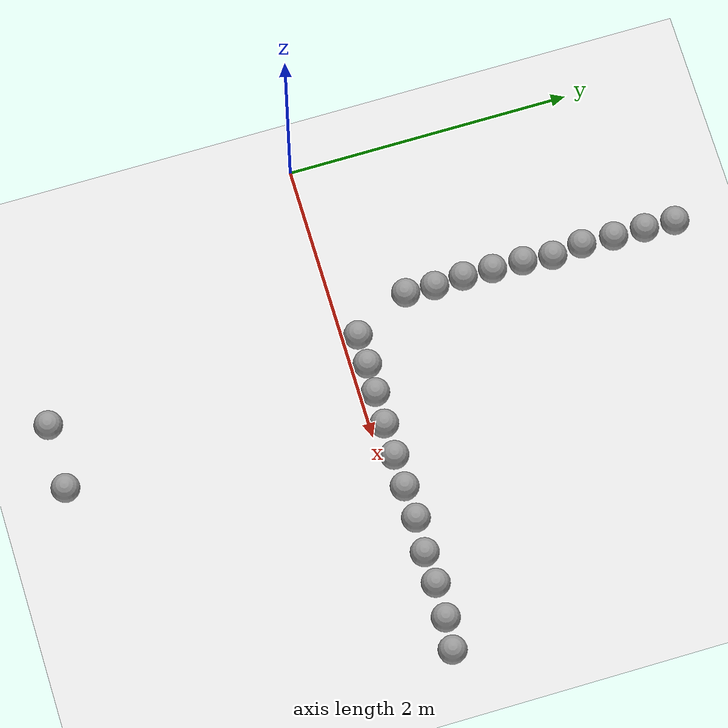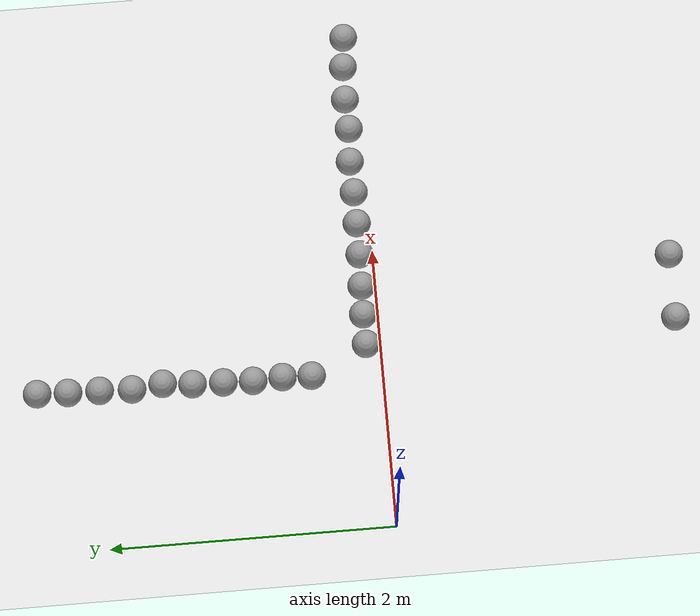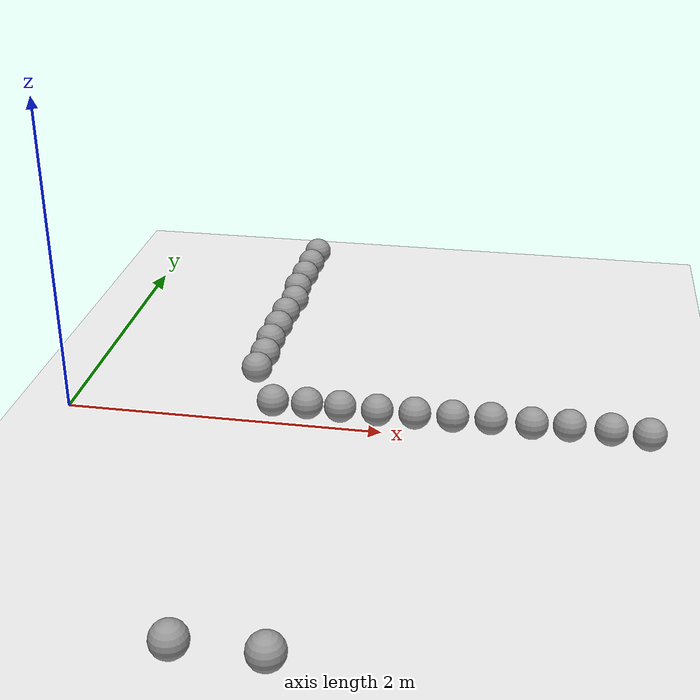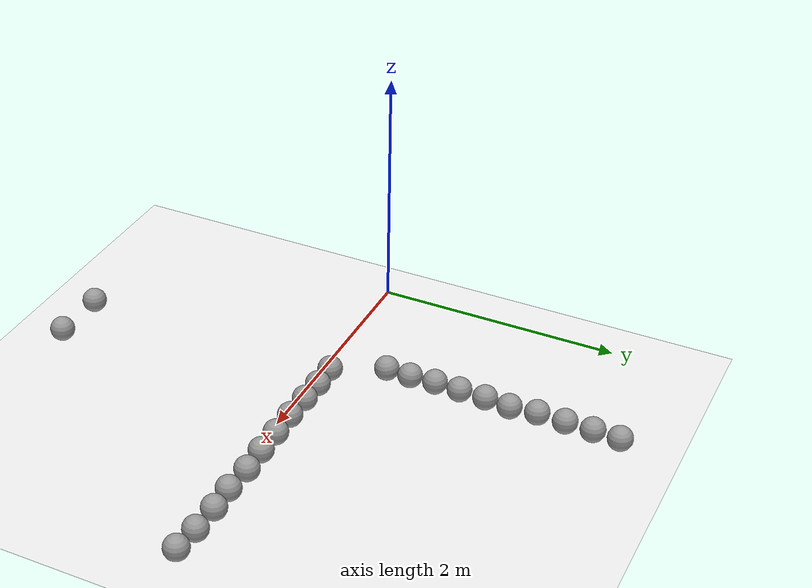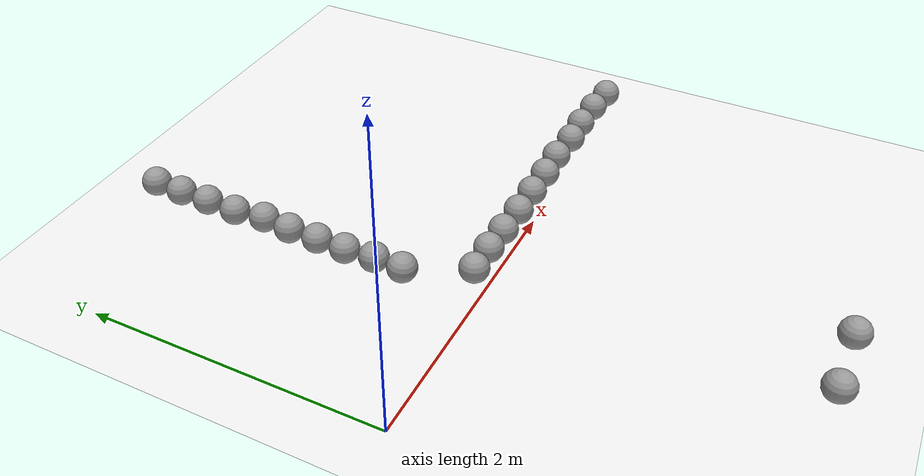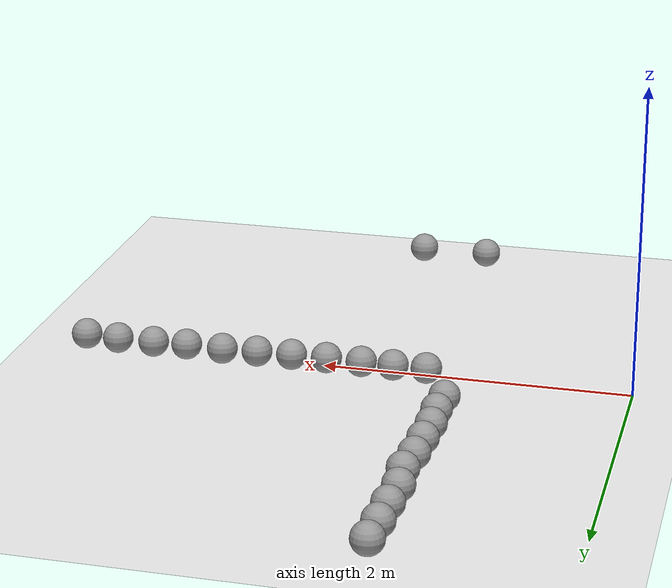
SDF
<sdf version="1.7">
 <world name="default">
  <model name="ground_plane">
   <static>1</static>
   <link name="link">
    <collision name="collision">
     <geometry><plane><normal>0 0 1</normal><size>100 100</size></plane></geometry>
     <surface>
      <contact><collide_bitmask>65535</collide_bitmask></contact>
      <friction><ode><mu>100</mu><mu2>50</mu2></ode></friction>
     </surface>
    </collision>
    <visual name="visual">
     <cast_shadows>0</cast_shadows>
     <geometry><plane><normal>0 0 1</normal><size>100 100</size></plane></geometry>
     <material>
      <script><uri>file://media/materials/scripts/gazebo.material</uri><name>Gazebo/White</name></script>
     </material>
    </visual>
   </link>
  </model>
  <model name="sphere_49">
   <link name="link_0">
    <inertial>
     <mass>1</mass>
     <inertia><ixx>0.1</ixx><ixy>0</ixy><ixz>0</ixz><iyy>0.1</iyy><iyz>0</iyz><izz>0.1</izz></inertia>
    </inertial>
    <visual name="visual">
     <geometry><sphere><radius>0.1</radius></sphere></geometry>
     <material>
      <lighting>1</lighting>
      <script><uri>file://media/materials/scripts/gazebo.material</uri><name>Gazebo/Grey</name></script>
      <shader type="pixel"><normal_map>__default__</normal_map></shader>
      <ambient>0.3 0.3 0.3 1</ambient>
      <diffuse>0.7 0.7 0.7 1</diffuse>
      <specular>0.01 0.01 0.01 1</specular>
      <emissive>0 0 0 1</emissive>
     </material>
    </visual>
    <collision name="collision">
     <geometry><sphere><radius>0.1</radius></sphere></geometry>
     <surface>
      <friction>
       <ode><mu>1</mu><mu2>1</mu2><fdir1>0 0 0</fdir1><slip1>0</slip1><slip2>0</slip2></ode>
       <torsional>
        <coefficient>1</coefficient>
        <patch_radius>0</patch_radius>
        <surface_radius>0</surface_radius>
        <use_patch_radius>1</use_patch_radius>
        <ode><slip>0</slip></ode>
       </torsional>
      </friction>
      <bounce><restitution_coefficient>0</restitution_coefficient><threshold>1e+06</threshold></bounce>
      <contact>
       <collide_without_contact>0</collide_without_contact>
       <collide_without_contact_bitmask>1</collide_without_contact_bitmask>
       <collide_bitmask>1</collide_bitmask>
       <ode>
        <soft_cfm>0</soft_cfm>
        <soft_erp>0.2</soft_erp>
        <kp>1e+13</kp>
        <kd>1</kd>
        <max_vel>0.01</max_vel>
        <min_depth>0</min_depth>
       </ode>
       <bullet>
        <split_impulse>1</split_impulse>
        <split_impulse_penetration_threshold>-0.01</split_impulse_penetration_threshold>
        <soft_cfm>0</soft_cfm>
        <soft_erp>0.2</soft_erp>
        <kp>1e+13</kp>
        <kd>1</kd>
       </bullet>
      </contact>
     </surface>
    </collision>
   </link>
   <static>0</static>
   <pose>1.3179 -2.0915 0.1 0 -0 0</pose>
  </model>
  <model name="sphere_51">
   <link name="link_0">
    <inertial>
     <mass>1</mass>
     <inertia><ixx>0.1</ixx><ixy>0</ixy><ixz>0</ixz><iyy>0.1</iyy><iyz>0</iyz><izz>0.1</izz></inertia>
    </inertial>
    <visual name="visual">
     <geometry><sphere><radius>0.1</radius></sphere></geometry>
     <material>
      <lighting>1</lighting>
      <script><uri>file://media/materials/scripts/gazebo.material</uri><name>Gazebo/Grey</name></script>
      <shader type="pixel"><normal_map>__default__</normal_map></shader>
      <ambient>0.3 0.3 0.3 1</ambient>
      <diffuse>0.7 0.7 0.7 1</diffuse>
      <specular>0.01 0.01 0.01 1</specular>
      <emissive>0 0 0 1</emissive>
     </material>
    </visual>
    <collision name="collision">
     <geometry><sphere><radius>0.1</radius></sphere></geometry>
     <surface>
      <friction>
       <ode><mu>1</mu><mu2>1</mu2><fdir1>0 0 0</fdir1><slip1>0</slip1><slip2>0</slip2></ode>
       <torsional>
        <coefficient>1</coefficient>
        <patch_radius>0</patch_radius>
        <surface_radius>0</surface_radius>
        <use_patch_radius>1</use_patch_radius>
        <ode><slip>0</slip></ode>
       </torsional>
      </friction>
      <bounce><restitution_coefficient>0</restitution_coefficient><threshold>1e+06</threshold></bounce>
      <contact>
       <collide_without_contact>0</collide_without_contact>
       <collide_without_contact_bitmask>1</collide_without_contact_bitmask>
       <collide_bitmask>1</collide_bitmask>
       <ode>
        <soft_cfm>0</soft_cfm>
        <soft_erp>0.2</soft_erp>
        <kp>1e+13</kp>
        <kd>1</kd>
        <max_vel>0.01</max_vel>
        <min_depth>0</min_depth>
       </ode>
       <bullet>
        <split_impulse>1</split_impulse>
        <split_impulse_penetration_threshold>-0.01</split_impulse_penetration_threshold>
        <soft_cfm>0</soft_cfm>
        <soft_erp>0.2</soft_erp>
        <kp>1e+13</kp>
        <kd>1</kd>
       </bullet>
      </contact>
     </surface>
    </collision>
   </link>
   <static>0</static>
   <pose>1.77871 -2.09636 0.1 0 -0 0</pose>
  </model>
  <model name="sphere_63">
   <link name="link_0">
    <inertial>
     <mass>1</mass>
     <inertia><ixx>0.1</ixx><ixy>0</ixy><ixz>0</ixz><iyy>0.1</iyy><iyz>0</iyz><izz>0.1</izz></inertia>
    </inertial>
    <visual name="visual">
     <geometry><sphere><radius>0.1</radius></sphere></geometry>
     <material>
      <lighting>1</lighting>
      <script><uri>file://media/materials/scripts/gazebo.material</uri><name>Gazebo/Grey</name></script>
      <shader type="pixel"><normal_map>__default__</normal_map></shader>
      <ambient>0.3 0.3 0.3 1</ambient>
      <diffuse>0.7 0.7 0.7 1</diffuse>
      <specular>0.01 0.01 0.01 1</specular>
      <emissive>0 0 0 1</emissive>
     </material>
    </visual>
    <collision name="collision">
     <geometry><sphere><radius>0.1</radius></sphere></geometry>
     <surface>
      <friction>
       <ode><mu>1</mu><mu2>1</mu2><fdir1>0 0 0</fdir1><slip1>0</slip1><slip2>0</slip2></ode>
       <torsional>
        <coefficient>1</coefficient>
        <patch_radius>0</patch_radius>
        <surface_radius>0</surface_radius>
        <use_patch_radius>1</use_patch_radius>
        <ode><slip>0</slip></ode>
       </torsional>
      </friction>
      <bounce><restitution_coefficient>0</restitution_coefficient><threshold>1e+06</threshold></bounce>
      <contact>
       <collide_without_contact>0</collide_without_contact>
       <collide_without_contact_bitmask>1</collide_without_contact_bitmask>
       <collide_bitmask>1</collide_bitmask>
       <ode>
        <soft_cfm>0</soft_cfm>
        <soft_erp>0.2</soft_erp>
        <kp>1e+13</kp>
        <kd>1</kd>
        <max_vel>0.01</max_vel>
        <min_depth>0</min_depth>
       </ode>
       <bullet>
        <split_impulse>1</split_impulse>
        <split_impulse_penetration_threshold>-0.01</split_impulse_penetration_threshold>
        <soft_cfm>0</soft_cfm>
        <soft_erp>0.2</soft_erp>
        <kp>1e+13</kp>
        <kd>1</kd>
       </bullet>
      </contact>
     </surface>
    </collision>
   </link>
   <static>0</static>
   <pose>1.30048 0.10381 0.1 0 -0 0</pose>
  </model>
  <model name="sphere_64">
   <link name="link_0">
    <inertial>
     <mass>1</mass>
     <inertia><ixx>0.1</ixx><ixy>0</ixy><ixz>0</ixz><iyy>0.1</iyy><iyz>0</iyz><izz>0.1</izz></inertia>
    </inertial>
    <visual name="visual">
     <geometry><sphere><radius>0.1</radius></sphere></geometry>
     <material>
      <lighting>1</lighting>
      <script><uri>file://media/materials/scripts/gazebo.material</uri><name>Gazebo/Grey</name></script>
      <shader type="pixel"><normal_map>__default__</normal_map></shader>
      <ambient>0.3 0.3 0.3 1</ambient>
      <diffuse>0.7 0.7 0.7 1</diffuse>
      <specular>0.01 0.01 0.01 1</specular>
      <emissive>0 0 0 1</emissive>
     </material>
    </visual>
    <collision name="collision">
     <geometry><sphere><radius>0.1</radius></sphere></geometry>
     <surface>
      <friction>
       <ode><mu>1</mu><mu2>1</mu2><fdir1>0 0 0</fdir1><slip1>0</slip1><slip2>0</slip2></ode>
       <torsional>
        <coefficient>1</coefficient>
        <patch_radius>0</patch_radius>
        <surface_radius>0</surface_radius>
        <use_patch_radius>1</use_patch_radius>
        <ode><slip>0</slip></ode>
       </torsional>
      </friction>
      <bounce><restitution_coefficient>0</restitution_coefficient><threshold>1e+06</threshold></bounce>
      <contact>
       <collide_without_contact>0</collide_without_contact>
       <collide_without_contact_bitmask>1</collide_without_contact_bitmask>
       <collide_bitmask>1</collide_bitmask>
       <ode>
        <soft_cfm>0</soft_cfm>
        <soft_erp>0.2</soft_erp>
        <kp>1e+13</kp>
        <kd>1</kd>
        <max_vel>0.01</max_vel>
        <min_depth>0</min_depth>
       </ode>
       <bullet>
        <split_impulse>1</split_impulse>
        <split_impulse_penetration_threshold>-0.01</split_impulse_penetration_threshold>
        <soft_cfm>0</soft_cfm>
        <soft_erp>0.2</soft_erp>
        <kp>1e+13</kp>
        <kd>1</kd>
       </bullet>
      </contact>
     </surface>
    </collision>
   </link>
   <static>0</static>
   <pose>1.51709 0.105594 0.1 0 -0 0</pose>
  </model>
  <model name="sphere_65">
   <link name="link_0">
    <inertial>
     <mass>1</mass>
     <inertia><ixx>0.1</ixx><ixy>0</ixy><ixz>0</ixz><iyy>0.1</iyy><iyz>0</iyz><izz>0.1</izz></inertia>
    </inertial>
    <visual name="visual">
     <geometry><sphere><radius>0.1</radius></sphere></geometry>
     <material>
      <lighting>1</lighting>
      <script><uri>file://media/materials/scripts/gazebo.material</uri><name>Gazebo/Grey</name></script>
      <shader type="pixel"><normal_map>__default__</normal_map></shader>
      <ambient>0.3 0.3 0.3 1</ambient>
      <diffuse>0.7 0.7 0.7 1</diffuse>
      <specular>0.01 0.01 0.01 1</specular>
      <emissive>0 0 0 1</emissive>
     </material>
    </visual>
    <collision name="collision">
     <geometry><sphere><radius>0.1</radius></sphere></geometry>
     <surface>
      <friction>
       <ode><mu>1</mu><mu2>1</mu2><fdir1>0 0 0</fdir1><slip1>0</slip1><slip2>0</slip2></ode>
       <torsional>
        <coefficient>1</coefficient>
        <patch_radius>0</patch_radius>
        <surface_radius>0</surface_radius>
        <use_patch_radius>1</use_patch_radius>
        <ode><slip>0</slip></ode>
       </torsional>
      </friction>
      <bounce><restitution_coefficient>0</restitution_coefficient><threshold>1e+06</threshold></bounce>
      <contact>
       <collide_without_contact>0</collide_without_contact>
       <collide_without_contact_bitmask>1</collide_without_contact_bitmask>
       <collide_bitmask>1</collide_bitmask>
       <ode>
        <soft_cfm>0</soft_cfm>
        <soft_erp>0.2</soft_erp>
        <kp>1e+13</kp>
        <kd>1</kd>
        <max_vel>0.01</max_vel>
        <min_depth>0</min_depth>
       </ode>
       <bullet>
        <split_impulse>1</split_impulse>
        <split_impulse_penetration_threshold>-0.01</split_impulse_penetration_threshold>
        <soft_cfm>0</soft_cfm>
        <soft_erp>0.2</soft_erp>
        <kp>1e+13</kp>
        <kd>1</kd>
       </bullet>
      </contact>
     </surface>
    </collision>
   </link>
   <static>0</static>
   <pose>1.7263 0.099869 0.1 0 -0 0</pose>
  </model>
  <model name="sphere_66">
   <link name="link_0">
    <inertial>
     <mass>1</mass>
     <inertia><ixx>0.1</ixx><ixy>0</ixy><ixz>0</ixz><iyy>0.1</iyy><iyz>0</iyz><izz>0.1</izz></inertia>
    </inertial>
    <visual name="visual">
     <geometry><sphere><radius>0.1</radius></sphere></geometry>
     <material>
      <lighting>1</lighting>
      <script><uri>file://media/materials/scripts/gazebo.material</uri><name>Gazebo/Grey</name></script>
      <shader type="pixel"><normal_map>__default__</normal_map></shader>
      <ambient>0.3 0.3 0.3 1</ambient>
      <diffuse>0.7 0.7 0.7 1</diffuse>
      <specular>0.01 0.01 0.01 1</specular>
      <emissive>0 0 0 1</emissive>
     </material>
    </visual>
    <collision name="collision">
     <geometry><sphere><radius>0.1</radius></sphere></geometry>
     <surface>
      <friction>
       <ode><mu>1</mu><mu2>1</mu2><fdir1>0 0 0</fdir1><slip1>0</slip1><slip2>0</slip2></ode>
       <torsional>
        <coefficient>1</coefficient>
        <patch_radius>0</patch_radius>
        <surface_radius>0</surface_radius>
        <use_patch_radius>1</use_patch_radius>
        <ode><slip>0</slip></ode>
       </torsional>
      </friction>
      <bounce><restitution_coefficient>0</restitution_coefficient><threshold>1e+06</threshold></bounce>
      <contact>
       <collide_without_contact>0</collide_without_contact>
       <collide_without_contact_bitmask>1</collide_without_contact_bitmask>
       <collide_bitmask>1</collide_bitmask>
       <ode>
        <soft_cfm>0</soft_cfm>
        <soft_erp>0.2</soft_erp>
        <kp>1e+13</kp>
        <kd>1</kd>
        <max_vel>0.01</max_vel>
        <min_depth>0</min_depth>
       </ode>
       <bullet>
        <split_impulse>1</split_impulse>
        <split_impulse_penetration_threshold>-0.01</split_impulse_penetration_threshold>
        <soft_cfm>0</soft_cfm>
        <soft_erp>0.2</soft_erp>
        <kp>1e+13</kp>
        <kd>1</kd>
       </bullet>
      </contact>
     </surface>
    </collision>
   </link>
   <static>0</static>
   <pose>1.95782 0.094245 0.1 0 -0 0</pose>
  </model>
  <model name="sphere_67">
   <link name="link_0">
    <inertial>
     <mass>1</mass>
     <inertia><ixx>0.1</ixx><ixy>0</ixy><ixz>0</ixz><iyy>0.1</iyy><iyz>0</iyz><izz>0.1</izz></inertia>
    </inertial>
    <visual name="visual">
     <geometry><sphere><radius>0.1</radius></sphere></geometry>
     <material>
      <lighting>1</lighting>
      <script><uri>file://media/materials/scripts/gazebo.material</uri><name>Gazebo/Grey</name></script>
      <shader type="pixel"><normal_map>__default__</normal_map></shader>
      <ambient>0.3 0.3 0.3 1</ambient>
      <diffuse>0.7 0.7 0.7 1</diffuse>
      <specular>0.01 0.01 0.01 1</specular>
      <emissive>0 0 0 1</emissive>
     </material>
    </visual>
    <collision name="collision">
     <geometry><sphere><radius>0.1</radius></sphere></geometry>
     <surface>
      <friction>
       <ode><mu>1</mu><mu2>1</mu2><fdir1>0 0 0</fdir1><slip1>0</slip1><slip2>0</slip2></ode>
       <torsional>
        <coefficient>1</coefficient>
        <patch_radius>0</patch_radius>
        <surface_radius>0</surface_radius>
        <use_patch_radius>1</use_patch_radius>
        <ode><slip>0</slip></ode>
       </torsional>
      </friction>
      <bounce><restitution_coefficient>0</restitution_coefficient><threshold>1e+06</threshold></bounce>
      <contact>
       <collide_without_contact>0</collide_without_contact>
       <collide_without_contact_bitmask>1</collide_without_contact_bitmask>
       <collide_bitmask>1</collide_bitmask>
       <ode>
        <soft_cfm>0</soft_cfm>
        <soft_erp>0.2</soft_erp>
        <kp>1e+13</kp>
        <kd>1</kd>
        <max_vel>0.01</max_vel>
        <min_depth>0</min_depth>
       </ode>
       <bullet>
        <split_impulse>1</split_impulse>
        <split_impulse_penetration_threshold>-0.01</split_impulse_penetration_threshold>
        <soft_cfm>0</soft_cfm>
        <soft_erp>0.2</soft_erp>
        <kp>1e+13</kp>
        <kd>1</kd>
       </bullet>
      </contact>
     </surface>
    </collision>
   </link>
   <static>0</static>
   <pose>2.18937 0.096173 0.1 0 -0 0</pose>
  </model>
  <model name="sphere_68">
   <link name="link_0">
    <inertial>
     <mass>1</mass>
     <inertia><ixx>0.1</ixx><ixy>0</ixy><ixz>0</ixz><iyy>0.1</iyy><iyz>0</iyz><izz>0.1</izz></inertia>
    </inertial>
    <visual name="visual">
     <geometry><sphere><radius>0.1</radius></sphere></geometry>
     <material>
      <lighting>1</lighting>
      <script><uri>file://media/materials/scripts/gazebo.material</uri><name>Gazebo/Grey</name></script>
      <shader type="pixel"><normal_map>__default__</normal_map></shader>
      <ambient>0.3 0.3 0.3 1</ambient>
      <diffuse>0.7 0.7 0.7 1</diffuse>
      <specular>0.01 0.01 0.01 1</specular>
      <emissive>0 0 0 1</emissive>
     </material>
    </visual>
    <collision name="collision">
     <geometry><sphere><radius>0.1</radius></sphere></geometry>
     <surface>
      <friction>
       <ode><mu>1</mu><mu2>1</mu2><fdir1>0 0 0</fdir1><slip1>0</slip1><slip2>0</slip2></ode>
       <torsional>
        <coefficient>1</coefficient>
        <patch_radius>0</patch_radius>
        <surface_radius>0</surface_radius>
        <use_patch_radius>1</use_patch_radius>
        <ode><slip>0</slip></ode>
       </torsional>
      </friction>
      <bounce><restitution_coefficient>0</restitution_coefficient><threshold>1e+06</threshold></bounce>
      <contact>
       <collide_without_contact>0</collide_without_contact>
       <collide_without_contact_bitmask>1</collide_without_contact_bitmask>
       <collide_bitmask>1</collide_bitmask>
       <ode>
        <soft_cfm>0</soft_cfm>
        <soft_erp>0.2</soft_erp>
        <kp>1e+13</kp>
        <kd>1</kd>
        <max_vel>0.01</max_vel>
        <min_depth>0</min_depth>
       </ode>
       <bullet>
        <split_impulse>1</split_impulse>
        <split_impulse_penetration_threshold>-0.01</split_impulse_penetration_threshold>
        <soft_cfm>0</soft_cfm>
        <soft_erp>0.2</soft_erp>
        <kp>1e+13</kp>
        <kd>1</kd>
       </bullet>
      </contact>
     </surface>
    </collision>
   </link>
   <static>0</static>
   <pose>2.42092 0.098084 0.1 0 -0 0</pose>
  </model>
  <model name="sphere_69">
   <link name="link_0">
    <inertial>
     <mass>1</mass>
     <inertia><ixx>0.1</ixx><ixy>0</ixy><ixz>0</ixz><iyy>0.1</iyy><iyz>0</iyz><izz>0.1</izz></inertia>
    </inertial>
    <visual name="visual">
     <geometry><sphere><radius>0.1</radius></sphere></geometry>
     <material>
      <lighting>1</lighting>
      <script><uri>file://media/materials/scripts/gazebo.material</uri><name>Gazebo/Grey</name></script>
      <shader type="pixel"><normal_map>__default__</normal_map></shader>
      <ambient>0.3 0.3 0.3 1</ambient>
      <diffuse>0.7 0.7 0.7 1</diffuse>
      <specular>0.01 0.01 0.01 1</specular>
      <emissive>0 0 0 1</emissive>
     </material>
    </visual>
    <collision name="collision">
     <geometry><sphere><radius>0.1</radius></sphere></geometry>
     <surface>
      <friction>
       <ode><mu>1</mu><mu2>1</mu2><fdir1>0 0 0</fdir1><slip1>0</slip1><slip2>0</slip2></ode>
       <torsional>
        <coefficient>1</coefficient>
        <patch_radius>0</patch_radius>
        <surface_radius>0</surface_radius>
        <use_patch_radius>1</use_patch_radius>
        <ode><slip>0</slip></ode>
       </torsional>
      </friction>
      <bounce><restitution_coefficient>0</restitution_coefficient><threshold>1e+06</threshold></bounce>
      <contact>
       <collide_without_contact>0</collide_without_contact>
       <collide_without_contact_bitmask>1</collide_without_contact_bitmask>
       <collide_bitmask>1</collide_bitmask>
       <ode>
        <soft_cfm>0</soft_cfm>
        <soft_erp>0.2</soft_erp>
        <kp>1e+13</kp>
        <kd>1</kd>
        <max_vel>0.01</max_vel>
        <min_depth>0</min_depth>
       </ode>
       <bullet>
        <split_impulse>1</split_impulse>
        <split_impulse_penetration_threshold>-0.01</split_impulse_penetration_threshold>
        <soft_cfm>0</soft_cfm>
        <soft_erp>0.2</soft_erp>
        <kp>1e+13</kp>
        <kd>1</kd>
       </bullet>
      </contact>
     </surface>
    </collision>
   </link>
   <static>0</static>
   <pose>2.65239 0.107481 0.1 0 -0 0</pose>
  </model>
  <model name="sphere_70">
   <link name="link_0">
    <inertial>
     <mass>1</mass>
     <inertia><ixx>0.1</ixx><ixy>0</ixy><ixz>0</ixz><iyy>0.1</iyy><iyz>0</iyz><izz>0.1</izz></inertia>
    </inertial>
    <visual name="visual">
     <geometry><sphere><radius>0.1</radius></sphere></geometry>
     <material>
      <lighting>1</lighting>
      <script><uri>file://media/materials/scripts/gazebo.material</uri><name>Gazebo/Grey</name></script>
      <shader type="pixel"><normal_map>__default__</normal_map></shader>
      <ambient>0.3 0.3 0.3 1</ambient>
      <diffuse>0.7 0.7 0.7 1</diffuse>
      <specular>0.01 0.01 0.01 1</specular>
      <emissive>0 0 0 1</emissive>
     </material>
    </visual>
    <collision name="collision">
     <geometry><sphere><radius>0.1</radius></sphere></geometry>
     <surface>
      <friction>
       <ode><mu>1</mu><mu2>1</mu2><fdir1>0 0 0</fdir1><slip1>0</slip1><slip2>0</slip2></ode>
       <torsional>
        <coefficient>1</coefficient>
        <patch_radius>0</patch_radius>
        <surface_radius>0</surface_radius>
        <use_patch_radius>1</use_patch_radius>
        <ode><slip>0</slip></ode>
       </torsional>
      </friction>
      <bounce><restitution_coefficient>0</restitution_coefficient><threshold>1e+06</threshold></bounce>
      <contact>
       <collide_without_contact>0</collide_without_contact>
       <collide_without_contact_bitmask>1</collide_without_contact_bitmask>
       <collide_bitmask>1</collide_bitmask>
       <ode>
        <soft_cfm>0</soft_cfm>
        <soft_erp>0.2</soft_erp>
        <kp>1e+13</kp>
        <kd>1</kd>
        <max_vel>0.01</max_vel>
        <min_depth>0</min_depth>
       </ode>
       <bullet>
        <split_impulse>1</split_impulse>
        <split_impulse_penetration_threshold>-0.01</split_impulse_penetration_threshold>
        <soft_cfm>0</soft_cfm>
        <soft_erp>0.2</soft_erp>
        <kp>1e+13</kp>
        <kd>1</kd>
       </bullet>
      </contact>
     </surface>
    </collision>
   </link>
   <static>0</static>
   <pose>2.89905 0.094568 0.1 0 -0 0</pose>
  </model>
  <model name="sphere_71">
   <link name="link_0">
    <inertial>
     <mass>1</mass>
     <inertia><ixx>0.1</ixx><ixy>0</ixy><ixz>0</ixz><iyy>0.1</iyy><iyz>0</iyz><izz>0.1</izz></inertia>
    </inertial>
    <visual name="visual">
     <geometry><sphere><radius>0.1</radius></sphere></geometry>
     <material>
      <lighting>1</lighting>
      <script><uri>file://media/materials/scripts/gazebo.material</uri><name>Gazebo/Grey</name></script>
      <shader type="pixel"><normal_map>__default__</normal_map></shader>
      <ambient>0.3 0.3 0.3 1</ambient>
      <diffuse>0.7 0.7 0.7 1</diffuse>
      <specular>0.01 0.01 0.01 1</specular>
      <emissive>0 0 0 1</emissive>
     </material>
    </visual>
    <collision name="collision">
     <geometry><sphere><radius>0.1</radius></sphere></geometry>
     <surface>
      <friction>
       <ode><mu>1</mu><mu2>1</mu2><fdir1>0 0 0</fdir1><slip1>0</slip1><slip2>0</slip2></ode>
       <torsional>
        <coefficient>1</coefficient>
        <patch_radius>0</patch_radius>
        <surface_radius>0</surface_radius>
        <use_patch_radius>1</use_patch_radius>
        <ode><slip>0</slip></ode>
       </torsional>
      </friction>
      <bounce><restitution_coefficient>0</restitution_coefficient><threshold>1e+06</threshold></bounce>
      <contact>
       <collide_without_contact>0</collide_without_contact>
       <collide_without_contact_bitmask>1</collide_without_contact_bitmask>
       <collide_bitmask>1</collide_bitmask>
       <ode>
        <soft_cfm>0</soft_cfm>
        <soft_erp>0.2</soft_erp>
        <kp>1e+13</kp>
        <kd>1</kd>
        <max_vel>0.01</max_vel>
        <min_depth>0</min_depth>
       </ode>
       <bullet>
        <split_impulse>1</split_impulse>
        <split_impulse_penetration_threshold>-0.01</split_impulse_penetration_threshold>
        <soft_cfm>0</soft_cfm>
        <soft_erp>0.2</soft_erp>
        <kp>1e+13</kp>
        <kd>1</kd>
       </bullet>
      </contact>
     </surface>
    </collision>
   </link>
   <static>0</static>
   <pose>3.12304 0.103899 0.1 0 -0 0</pose>
  </model>
  <model name="sphere_72">
   <link name="link_0">
    <inertial>
     <mass>1</mass>
     <inertia><ixx>0.1</ixx><ixy>0</ixy><ixz>0</ixz><iyy>0.1</iyy><iyz>0</iyz><izz>0.1</izz></inertia>
    </inertial>
    <visual name="visual">
     <geometry><sphere><radius>0.1</radius></sphere></geometry>
     <material>
      <lighting>1</lighting>
      <script><uri>file://media/materials/scripts/gazebo.material</uri><name>Gazebo/Grey</name></script>
      <shader type="pixel"><normal_map>__default__</normal_map></shader>
      <ambient>0.3 0.3 0.3 1</ambient>
      <diffuse>0.7 0.7 0.7 1</diffuse>
      <specular>0.01 0.01 0.01 1</specular>
      <emissive>0 0 0 1</emissive>
     </material>
    </visual>
    <collision name="collision">
     <geometry><sphere><radius>0.1</radius></sphere></geometry>
     <surface>
      <friction>
       <ode><mu>1</mu><mu2>1</mu2><fdir1>0 0 0</fdir1><slip1>0</slip1><slip2>0</slip2></ode>
       <torsional>
        <coefficient>1</coefficient>
        <patch_radius>0</patch_radius>
        <surface_radius>0</surface_radius>
        <use_patch_radius>1</use_patch_radius>
        <ode><slip>0</slip></ode>
       </torsional>
      </friction>
      <bounce><restitution_coefficient>0</restitution_coefficient><threshold>1e+06</threshold></bounce>
      <contact>
       <collide_without_contact>0</collide_without_contact>
       <collide_without_contact_bitmask>1</collide_without_contact_bitmask>
       <collide_bitmask>1</collide_bitmask>
       <ode>
        <soft_cfm>0</soft_cfm>
        <soft_erp>0.2</soft_erp>
        <kp>1e+13</kp>
        <kd>1</kd>
        <max_vel>0.01</max_vel>
        <min_depth>0</min_depth>
       </ode>
       <bullet>
        <split_impulse>1</split_impulse>
        <split_impulse_penetration_threshold>-0.01</split_impulse_penetration_threshold>
        <soft_cfm>0</soft_cfm>
        <soft_erp>0.2</soft_erp>
        <kp>1e+13</kp>
        <kd>1</kd>
       </bullet>
      </contact>
     </surface>
    </collision>
   </link>
   <static>0</static>
   <pose>3.36963 0.098472 0.1 0 -0 0</pose>
  </model>
  <model name="sphere_73">
   <link name="link_0">
    <inertial>
     <mass>1</mass>
     <inertia><ixx>0.1</ixx><ixy>0</ixy><ixz>0</ixz><iyy>0.1</iyy><iyz>0</iyz><izz>0.1</izz></inertia>
    </inertial>
    <visual name="visual">
     <geometry><sphere><radius>0.1</radius></sphere></geometry>
     <material>
      <lighting>1</lighting>
      <script><uri>file://media/materials/scripts/gazebo.material</uri><name>Gazebo/Grey</name></script>
      <shader type="pixel"><normal_map>__default__</normal_map></shader>
      <ambient>0.3 0.3 0.3 1</ambient>
      <diffuse>0.7 0.7 0.7 1</diffuse>
      <specular>0.01 0.01 0.01 1</specular>
      <emissive>0 0 0 1</emissive>
     </material>
    </visual>
    <collision name="collision">
     <geometry><sphere><radius>0.1</radius></sphere></geometry>
     <surface>
      <friction>
       <ode><mu>1</mu><mu2>1</mu2><fdir1>0 0 0</fdir1><slip1>0</slip1><slip2>0</slip2></ode>
       <torsional>
        <coefficient>1</coefficient>
        <patch_radius>0</patch_radius>
        <surface_radius>0</surface_radius>
        <use_patch_radius>1</use_patch_radius>
        <ode><slip>0</slip></ode>
       </torsional>
      </friction>
      <bounce><restitution_coefficient>0</restitution_coefficient><threshold>1e+06</threshold></bounce>
      <contact>
       <collide_without_contact>0</collide_without_contact>
       <collide_without_contact_bitmask>1</collide_without_contact_bitmask>
       <collide_bitmask>1</collide_bitmask>
       <ode>
        <soft_cfm>0</soft_cfm>
        <soft_erp>0.2</soft_erp>
        <kp>1e+13</kp>
        <kd>1</kd>
        <max_vel>0.01</max_vel>
        <min_depth>0</min_depth>
       </ode>
       <bullet>
        <split_impulse>1</split_impulse>
        <split_impulse_penetration_threshold>-0.01</split_impulse_penetration_threshold>
        <soft_cfm>0</soft_cfm>
        <soft_erp>0.2</soft_erp>
        <kp>1e+13</kp>
        <kd>1</kd>
       </bullet>
      </contact>
     </surface>
    </collision>
   </link>
   <static>0</static>
   <pose>3.59393 0.077913 0.1 0 -0 0</pose>
  </model>
  <model name="sphere_75">
   <link name="link_0">
    <inertial>
     <mass>1</mass>
     <inertia><ixx>0.1</ixx><ixy>0</ixy><ixz>0</ixz><iyy>0.1</iyy><iyz>0</iyz><izz>0.1</izz></inertia>
    </inertial>
    <visual name="visual">
     <geometry><sphere><radius>0.1</radius></sphere></geometry>
     <material>
      <lighting>1</lighting>
      <script><uri>file://media/materials/scripts/gazebo.material</uri><name>Gazebo/Grey</name></script>
      <shader type="pixel"><normal_map>__default__</normal_map></shader>
      <ambient>0.3 0.3 0.3 1</ambient>
      <diffuse>0.7 0.7 0.7 1</diffuse>
      <specular>0.01 0.01 0.01 1</specular>
      <emissive>0 0 0 1</emissive>
     </material>
    </visual>
    <collision name="collision">
     <geometry><sphere><radius>0.1</radius></sphere></geometry>
     <surface>
      <friction>
       <ode><mu>1</mu><mu2>1</mu2><fdir1>0 0 0</fdir1><slip1>0</slip1><slip2>0</slip2></ode>
       <torsional>
        <coefficient>1</coefficient>
        <patch_radius>0</patch_radius>
        <surface_radius>0</surface_radius>
        <use_patch_radius>1</use_patch_radius>
        <ode><slip>0</slip></ode>
       </torsional>
      </friction>
      <bounce><restitution_coefficient>0</restitution_coefficient><threshold>1e+06</threshold></bounce>
      <contact>
       <collide_without_contact>0</collide_without_contact>
       <collide_without_contact_bitmask>1</collide_without_contact_bitmask>
       <collide_bitmask>1</collide_bitmask>
       <ode>
        <soft_cfm>0</soft_cfm>
        <soft_erp>0.2</soft_erp>
        <kp>1e+13</kp>
        <kd>1</kd>
        <max_vel>0.01</max_vel>
        <min_depth>0</min_depth>
       </ode>
       <bullet>
        <split_impulse>1</split_impulse>
        <split_impulse_penetration_threshold>-0.01</split_impulse_penetration_threshold>
        <soft_cfm>0</soft_cfm>
        <soft_erp>0.2</soft_erp>
        <kp>1e+13</kp>
        <kd>1</kd>
       </bullet>
      </contact>
     </surface>
    </collision>
   </link>
   <static>0</static>
   <pose>1.10226 0.503607 0.1 0.101616 -0.003493 1.5e-05</pose>
  </model>
  <model name="sphere_76">
   <link name="link_0">
    <inertial>
     <mass>1</mass>
     <inertia><ixx>0.1</ixx><ixy>0</ixy><ixz>0</ixz><iyy>0.1</iyy><iyz>0</iyz><izz>0.1</izz></inertia>
    </inertial>
    <visual name="visual">
     <geometry><sphere><radius>0.1</radius></sphere></geometry>
     <material>
      <lighting>1</lighting>
      <script><uri>file://media/materials/scripts/gazebo.material</uri><name>Gazebo/Grey</name></script>
      <shader type="pixel"><normal_map>__default__</normal_map></shader>
      <ambient>0.3 0.3 0.3 1</ambient>
      <diffuse>0.7 0.7 0.7 1</diffuse>
      <specular>0.01 0.01 0.01 1</specular>
      <emissive>0 0 0 1</emissive>
     </material>
    </visual>
    <collision name="collision">
     <geometry><sphere><radius>0.1</radius></sphere></geometry>
     <surface>
      <friction>
       <ode><mu>1</mu><mu2>1</mu2><fdir1>0 0 0</fdir1><slip1>0</slip1><slip2>0</slip2></ode>
       <torsional>
        <coefficient>1</coefficient>
        <patch_radius>0</patch_radius>
        <surface_radius>0</surface_radius>
        <use_patch_radius>1</use_patch_radius>
        <ode><slip>0</slip></ode>
       </torsional>
      </friction>
      <bounce><restitution_coefficient>0</restitution_coefficient><threshold>1e+06</threshold></bounce>
      <contact>
       <collide_without_contact>0</collide_without_contact>
       <collide_without_contact_bitmask>1</collide_without_contact_bitmask>
       <collide_bitmask>1</collide_bitmask>
       <ode>
        <soft_cfm>0</soft_cfm>
        <soft_erp>0.2</soft_erp>
        <kp>1e+13</kp>
        <kd>1</kd>
        <max_vel>0.01</max_vel>
        <min_depth>0</min_depth>
       </ode>
       <bullet>
        <split_impulse>1</split_impulse>
        <split_impulse_penetration_threshold>-0.01</split_impulse_penetration_threshold>
        <soft_cfm>0</soft_cfm>
        <soft_erp>0.2</soft_erp>
        <kp>1e+13</kp>
        <kd>1</kd>
       </bullet>
      </contact>
     </surface>
    </collision>
   </link>
   <static>0</static>
   <pose>1.10902 0.708113 0.1 -0.111961 0.003989 0.000131</pose>
  </model>
  <model name="sphere_77">
   <link name="link_0">
    <inertial>
     <mass>1</mass>
     <inertia><ixx>0.1</ixx><ixy>0</ixy><ixz>0</ixz><iyy>0.1</iyy><iyz>0</iyz><izz>0.1</izz></inertia>
    </inertial>
    <visual name="visual">
     <geometry><sphere><radius>0.1</radius></sphere></geometry>
     <material>
      <lighting>1</lighting>
      <script><uri>file://media/materials/scripts/gazebo.material</uri><name>Gazebo/Grey</name></script>
      <shader type="pixel"><normal_map>__default__</normal_map></shader>
      <ambient>0.3 0.3 0.3 1</ambient>
      <diffuse>0.7 0.7 0.7 1</diffuse>
      <specular>0.01 0.01 0.01 1</specular>
      <emissive>0 0 0 1</emissive>
     </material>
    </visual>
    <collision name="collision">
     <geometry><sphere><radius>0.1</radius></sphere></geometry>
     <surface>
      <friction>
       <ode><mu>1</mu><mu2>1</mu2><fdir1>0 0 0</fdir1><slip1>0</slip1><slip2>0</slip2></ode>
       <torsional>
        <coefficient>1</coefficient>
        <patch_radius>0</patch_radius>
        <surface_radius>0</surface_radius>
        <use_patch_radius>1</use_patch_radius>
        <ode><slip>0</slip></ode>
       </torsional>
      </friction>
      <bounce><restitution_coefficient>0</restitution_coefficient><threshold>1e+06</threshold></bounce>
      <contact>
       <collide_without_contact>0</collide_without_contact>
       <collide_without_contact_bitmask>1</collide_without_contact_bitmask>
       <collide_bitmask>1</collide_bitmask>
       <ode>
        <soft_cfm>0</soft_cfm>
        <soft_erp>0.2</soft_erp>
        <kp>1e+13</kp>
        <kd>1</kd>
        <max_vel>0.01</max_vel>
        <min_depth>0</min_depth>
       </ode>
       <bullet>
        <split_impulse>1</split_impulse>
        <split_impulse_penetration_threshold>-0.01</split_impulse_penetration_threshold>
        <soft_cfm>0</soft_cfm>
        <soft_erp>0.2</soft_erp>
        <kp>1e+13</kp>
        <kd>1</kd>
       </bullet>
      </contact>
     </surface>
    </collision>
   </link>
   <static>0</static>
   <pose>1.09899 0.916282 0.1 0 -0 0</pose>
  </model>
  <model name="sphere_78">
   <link name="link_0">
    <inertial>
     <mass>1</mass>
     <inertia><ixx>0.1</ixx><ixy>0</ixy><ixz>0</ixz><iyy>0.1</iyy><iyz>0</iyz><izz>0.1</izz></inertia>
    </inertial>
    <visual name="visual">
     <geometry><sphere><radius>0.1</radius></sphere></geometry>
     <material>
      <lighting>1</lighting>
      <script><uri>file://media/materials/scripts/gazebo.material</uri><name>Gazebo/Grey</name></script>
      <shader type="pixel"><normal_map>__default__</normal_map></shader>
      <ambient>0.3 0.3 0.3 1</ambient>
      <diffuse>0.7 0.7 0.7 1</diffuse>
      <specular>0.01 0.01 0.01 1</specular>
      <emissive>0 0 0 1</emissive>
     </material>
    </visual>
    <collision name="collision">
     <geometry><sphere><radius>0.1</radius></sphere></geometry>
     <surface>
      <friction>
       <ode><mu>1</mu><mu2>1</mu2><fdir1>0 0 0</fdir1><slip1>0</slip1><slip2>0</slip2></ode>
       <torsional>
        <coefficient>1</coefficient>
        <patch_radius>0</patch_radius>
        <surface_radius>0</surface_radius>
        <use_patch_radius>1</use_patch_radius>
        <ode><slip>0</slip></ode>
       </torsional>
      </friction>
      <bounce><restitution_coefficient>0</restitution_coefficient><threshold>1e+06</threshold></bounce>
      <contact>
       <collide_without_contact>0</collide_without_contact>
       <collide_without_contact_bitmask>1</collide_without_contact_bitmask>
       <collide_bitmask>1</collide_bitmask>
       <ode>
        <soft_cfm>0</soft_cfm>
        <soft_erp>0.2</soft_erp>
        <kp>1e+13</kp>
        <kd>1</kd>
        <max_vel>0.01</max_vel>
        <min_depth>0</min_depth>
       </ode>
       <bullet>
        <split_impulse>1</split_impulse>
        <split_impulse_penetration_threshold>-0.01</split_impulse_penetration_threshold>
        <soft_cfm>0</soft_cfm>
        <soft_erp>0.2</soft_erp>
        <kp>1e+13</kp>
        <kd>1</kd>
       </bullet>
      </contact>
     </surface>
    </collision>
   </link>
   <static>0</static>
   <pose>1.10462 1.12538 0.1 0 -0 0</pose>
  </model>
  <model name="sphere_79">
   <link name="link_0">
    <inertial>
     <mass>1</mass>
     <inertia><ixx>0.1</ixx><ixy>0</ixy><ixz>0</ixz><iyy>0.1</iyy><iyz>0</iyz><izz>0.1</izz></inertia>
    </inertial>
    <visual name="visual">
     <geometry><sphere><radius>0.1</radius></sphere></geometry>
     <material>
      <lighting>1</lighting>
      <script><uri>file://media/materials/scripts/gazebo.material</uri><name>Gazebo/Grey</name></script>
      <shader type="pixel"><normal_map>__default__</normal_map></shader>
      <ambient>0.3 0.3 0.3 1</ambient>
      <diffuse>0.7 0.7 0.7 1</diffuse>
      <specular>0.01 0.01 0.01 1</specular>
      <emissive>0 0 0 1</emissive>
     </material>
    </visual>
    <collision name="collision">
     <geometry><sphere><radius>0.1</radius></sphere></geometry>
     <surface>
      <friction>
       <ode><mu>1</mu><mu2>1</mu2><fdir1>0 0 0</fdir1><slip1>0</slip1><slip2>0</slip2></ode>
       <torsional>
        <coefficient>1</coefficient>
        <patch_radius>0</patch_radius>
        <surface_radius>0</surface_radius>
        <use_patch_radius>1</use_patch_radius>
        <ode><slip>0</slip></ode>
       </torsional>
      </friction>
      <bounce><restitution_coefficient>0</restitution_coefficient><threshold>1e+06</threshold></bounce>
      <contact>
       <collide_without_contact>0</collide_without_contact>
       <collide_without_contact_bitmask>1</collide_without_contact_bitmask>
       <collide_bitmask>1</collide_bitmask>
       <ode>
        <soft_cfm>0</soft_cfm>
        <soft_erp>0.2</soft_erp>
        <kp>1e+13</kp>
        <kd>1</kd>
        <max_vel>0.01</max_vel>
        <min_depth>0</min_depth>
       </ode>
       <bullet>
        <split_impulse>1</split_impulse>
        <split_impulse_penetration_threshold>-0.01</split_impulse_penetration_threshold>
        <soft_cfm>0</soft_cfm>
        <soft_erp>0.2</soft_erp>
        <kp>1e+13</kp>
        <kd>1</kd>
       </bullet>
      </contact>
     </surface>
    </collision>
   </link>
   <static>0</static>
   <pose>1.11018 1.34189 0.1 0 -0 0</pose>
  </model>
  <model name="sphere_80">
   <link name="link_0">
    <inertial>
     <mass>1</mass>
     <inertia><ixx>0.1</ixx><ixy>0</ixy><ixz>0</ixz><iyy>0.1</iyy><iyz>0</iyz><izz>0.1</izz></inertia>
    </inertial>
    <visual name="visual">
     <geometry><sphere><radius>0.1</radius></sphere></geometry>
     <material>
      <lighting>1</lighting>
      <script><uri>file://media/materials/scripts/gazebo.material</uri><name>Gazebo/Grey</name></script>
      <shader type="pixel"><normal_map>__default__</normal_map></shader>
      <ambient>0.3 0.3 0.3 1</ambient>
      <diffuse>0.7 0.7 0.7 1</diffuse>
      <specular>0.01 0.01 0.01 1</specular>
      <emissive>0 0 0 1</emissive>
     </material>
    </visual>
    <collision name="collision">
     <geometry><sphere><radius>0.1</radius></sphere></geometry>
     <surface>
      <friction>
       <ode><mu>1</mu><mu2>1</mu2><fdir1>0 0 0</fdir1><slip1>0</slip1><slip2>0</slip2></ode>
       <torsional>
        <coefficient>1</coefficient>
        <patch_radius>0</patch_radius>
        <surface_radius>0</surface_radius>
        <use_patch_radius>1</use_patch_radius>
        <ode><slip>0</slip></ode>
       </torsional>
      </friction>
      <bounce><restitution_coefficient>0</restitution_coefficient><threshold>1e+06</threshold></bounce>
      <contact>
       <collide_without_contact>0</collide_without_contact>
       <collide_without_contact_bitmask>1</collide_without_contact_bitmask>
       <collide_bitmask>1</collide_bitmask>
       <ode>
        <soft_cfm>0</soft_cfm>
        <soft_erp>0.2</soft_erp>
        <kp>1e+13</kp>
        <kd>1</kd>
        <max_vel>0.01</max_vel>
        <min_depth>0</min_depth>
       </ode>
       <bullet>
        <split_impulse>1</split_impulse>
        <split_impulse_penetration_threshold>-0.01</split_impulse_penetration_threshold>
        <soft_cfm>0</soft_cfm>
        <soft_erp>0.2</soft_erp>
        <kp>1e+13</kp>
        <kd>1</kd>
       </bullet>
      </contact>
     </surface>
    </collision>
   </link>
   <static>0</static>
   <pose>1.13041 1.55086 0.1 0 -0 0</pose>
  </model>
  <model name="sphere_81">
   <link name="link_0">
    <inertial>
     <mass>1</mass>
     <inertia><ixx>0.1</ixx><ixy>0</ixy><ixz>0</ixz><iyy>0.1</iyy><iyz>0</iyz><izz>0.1</izz></inertia>
    </inertial>
    <visual name="visual">
     <geometry><sphere><radius>0.1</radius></sphere></geometry>
     <material>
      <lighting>1</lighting>
      <script><uri>file://media/materials/scripts/gazebo.material</uri><name>Gazebo/Grey</name></script>
      <shader type="pixel"><normal_map>__default__</normal_map></shader>
      <ambient>0.3 0.3 0.3 1</ambient>
      <diffuse>0.7 0.7 0.7 1</diffuse>
      <specular>0.01 0.01 0.01 1</specular>
      <emissive>0 0 0 1</emissive>
     </material>
    </visual>
    <collision name="collision">
     <geometry><sphere><radius>0.1</radius></sphere></geometry>
     <surface>
      <friction>
       <ode><mu>1</mu><mu2>1</mu2><fdir1>0 0 0</fdir1><slip1>0</slip1><slip2>0</slip2></ode>
       <torsional>
        <coefficient>1</coefficient>
        <patch_radius>0</patch_radius>
        <surface_radius>0</surface_radius>
        <use_patch_radius>1</use_patch_radius>
        <ode><slip>0</slip></ode>
       </torsional>
      </friction>
      <bounce><restitution_coefficient>0</restitution_coefficient><threshold>1e+06</threshold></bounce>
      <contact>
       <collide_without_contact>0</collide_without_contact>
       <collide_without_contact_bitmask>1</collide_without_contact_bitmask>
       <collide_bitmask>1</collide_bitmask>
       <ode>
        <soft_cfm>0</soft_cfm>
        <soft_erp>0.2</soft_erp>
        <kp>1e+13</kp>
        <kd>1</kd>
        <max_vel>0.01</max_vel>
        <min_depth>0</min_depth>
       </ode>
       <bullet>
        <split_impulse>1</split_impulse>
        <split_impulse_penetration_threshold>-0.01</split_impulse_penetration_threshold>
        <soft_cfm>0</soft_cfm>
        <soft_erp>0.2</soft_erp>
        <kp>1e+13</kp>
        <kd>1</kd>
       </bullet>
      </contact>
     </surface>
    </collision>
   </link>
   <static>0</static>
   <pose>1.10734 1.76744 0.1 0 -0 0</pose>
  </model>
  <model name="sphere_82">
   <link name="link_0">
    <inertial>
     <mass>1</mass>
     <inertia><ixx>0.1</ixx><ixy>0</ixy><ixz>0</ixz><iyy>0.1</iyy><iyz>0</iyz><izz>0.1</izz></inertia>
    </inertial>
    <visual name="visual">
     <geometry><sphere><radius>0.1</radius></sphere></geometry>
     <material>
      <lighting>1</lighting>
      <script><uri>file://media/materials/scripts/gazebo.material</uri><name>Gazebo/Grey</name></script>
      <shader type="pixel"><normal_map>__default__</normal_map></shader>
      <ambient>0.3 0.3 0.3 1</ambient>
      <diffuse>0.7 0.7 0.7 1</diffuse>
      <specular>0.01 0.01 0.01 1</specular>
      <emissive>0 0 0 1</emissive>
     </material>
    </visual>
    <collision name="collision">
     <geometry><sphere><radius>0.1</radius></sphere></geometry>
     <surface>
      <friction>
       <ode><mu>1</mu><mu2>1</mu2><fdir1>0 0 0</fdir1><slip1>0</slip1><slip2>0</slip2></ode>
       <torsional>
        <coefficient>1</coefficient>
        <patch_radius>0</patch_radius>
        <surface_radius>0</surface_radius>
        <use_patch_radius>1</use_patch_radius>
        <ode><slip>0</slip></ode>
       </torsional>
      </friction>
      <bounce><restitution_coefficient>0</restitution_coefficient><threshold>1e+06</threshold></bounce>
      <contact>
       <collide_without_contact>0</collide_without_contact>
       <collide_without_contact_bitmask>1</collide_without_contact_bitmask>
       <collide_bitmask>1</collide_bitmask>
       <ode>
        <soft_cfm>0</soft_cfm>
        <soft_erp>0.2</soft_erp>
        <kp>1e+13</kp>
        <kd>1</kd>
        <max_vel>0.01</max_vel>
        <min_depth>0</min_depth>
       </ode>
       <bullet>
        <split_impulse>1</split_impulse>
        <split_impulse_penetration_threshold>-0.01</split_impulse_penetration_threshold>
        <soft_cfm>0</soft_cfm>
        <soft_erp>0.2</soft_erp>
        <kp>1e+13</kp>
        <kd>1</kd>
       </bullet>
      </contact>
     </surface>
    </collision>
   </link>
   <static>0</static>
   <pose>1.11591 1.99478 0.1 0 -0 0</pose>
  </model>
  <model name="sphere_83">
   <link name="link_0">
    <inertial>
     <mass>1</mass>
     <inertia><ixx>0.1</ixx><ixy>0</ixy><ixz>0</ixz><iyy>0.1</iyy><iyz>0</iyz><izz>0.1</izz></inertia>
    </inertial>
    <visual name="visual">
     <geometry><sphere><radius>0.1</radius></sphere></geometry>
     <material>
      <lighting>1</lighting>
      <script><uri>file://media/materials/scripts/gazebo.material</uri><name>Gazebo/Grey</name></script>
      <shader type="pixel"><normal_map>__default__</normal_map></shader>
      <ambient>0.3 0.3 0.3 1</ambient>
      <diffuse>0.7 0.7 0.7 1</diffuse>
      <specular>0.01 0.01 0.01 1</specular>
      <emissive>0 0 0 1</emissive>
     </material>
    </visual>
    <collision name="collision">
     <geometry><sphere><radius>0.1</radius></sphere></geometry>
     <surface>
      <friction>
       <ode><mu>1</mu><mu2>1</mu2><fdir1>0 0 0</fdir1><slip1>0</slip1><slip2>0</slip2></ode>
       <torsional>
        <coefficient>1</coefficient>
        <patch_radius>0</patch_radius>
        <surface_radius>0</surface_radius>
        <use_patch_radius>1</use_patch_radius>
        <ode><slip>0</slip></ode>
       </torsional>
      </friction>
      <bounce><restitution_coefficient>0</restitution_coefficient><threshold>1e+06</threshold></bounce>
      <contact>
       <collide_without_contact>0</collide_without_contact>
       <collide_without_contact_bitmask>1</collide_without_contact_bitmask>
       <collide_bitmask>1</collide_bitmask>
       <ode>
        <soft_cfm>0</soft_cfm>
        <soft_erp>0.2</soft_erp>
        <kp>1e+13</kp>
        <kd>1</kd>
        <max_vel>0.01</max_vel>
        <min_depth>0</min_depth>
       </ode>
       <bullet>
        <split_impulse>1</split_impulse>
        <split_impulse_penetration_threshold>-0.01</split_impulse_penetration_threshold>
        <soft_cfm>0</soft_cfm>
        <soft_erp>0.2</soft_erp>
        <kp>1e+13</kp>
        <kd>1</kd>
       </bullet>
      </contact>
     </surface>
    </collision>
   </link>
   <static>0</static>
   <pose>1.11923 2.21673 0.1 0 -0 0</pose>
  </model>
  <model name="sphere_84">
   <link name="link_0">
    <inertial>
     <mass>1</mass>
     <inertia><ixx>0.1</ixx><ixy>0</ixy><ixz>0</ixz><iyy>0.1</iyy><iyz>0</iyz><izz>0.1</izz></inertia>
    </inertial>
    <visual name="visual">
     <geometry><sphere><radius>0.1</radius></sphere></geometry>
     <material>
      <lighting>1</lighting>
      <script><uri>file://media/materials/scripts/gazebo.material</uri><name>Gazebo/Grey</name></script>
      <shader type="pixel"><normal_map>__default__</normal_map></shader>
      <ambient>0.3 0.3 0.3 1</ambient>
      <diffuse>0.7 0.7 0.7 1</diffuse>
      <specular>0.01 0.01 0.01 1</specular>
      <emissive>0 0 0 1</emissive>
     </material>
    </visual>
    <collision name="collision">
     <geometry><sphere><radius>0.1</radius></sphere></geometry>
     <surface>
      <friction>
       <ode><mu>1</mu><mu2>1</mu2><fdir1>0 0 0</fdir1><slip1>0</slip1><slip2>0</slip2></ode>
       <torsional>
        <coefficient>1</coefficient>
        <patch_radius>0</patch_radius>
        <surface_radius>0</surface_radius>
        <use_patch_radius>1</use_patch_radius>
        <ode><slip>0</slip></ode>
       </torsional>
      </friction>
      <bounce><restitution_coefficient>0</restitution_coefficient><threshold>1e+06</threshold></bounce>
      <contact>
       <collide_without_contact>0</collide_without_contact>
       <collide_without_contact_bitmask>1</collide_without_contact_bitmask>
       <collide_bitmask>1</collide_bitmask>
       <ode>
        <soft_cfm>0</soft_cfm>
        <soft_erp>0.2</soft_erp>
        <kp>1e+13</kp>
        <kd>1</kd>
        <max_vel>0.01</max_vel>
        <min_depth>0</min_depth>
       </ode>
       <bullet>
        <split_impulse>1</split_impulse>
        <split_impulse_penetration_threshold>-0.01</split_impulse_penetration_threshold>
        <soft_cfm>0</soft_cfm>
        <soft_erp>0.2</soft_erp>
        <kp>1e+13</kp>
        <kd>1</kd>
       </bullet>
      </contact>
     </surface>
    </collision>
   </link>
   <static>0</static>
   <pose>1.12789 2.43336 0.1 0 -0 0</pose>
  </model>
 </world>
</sdf>
